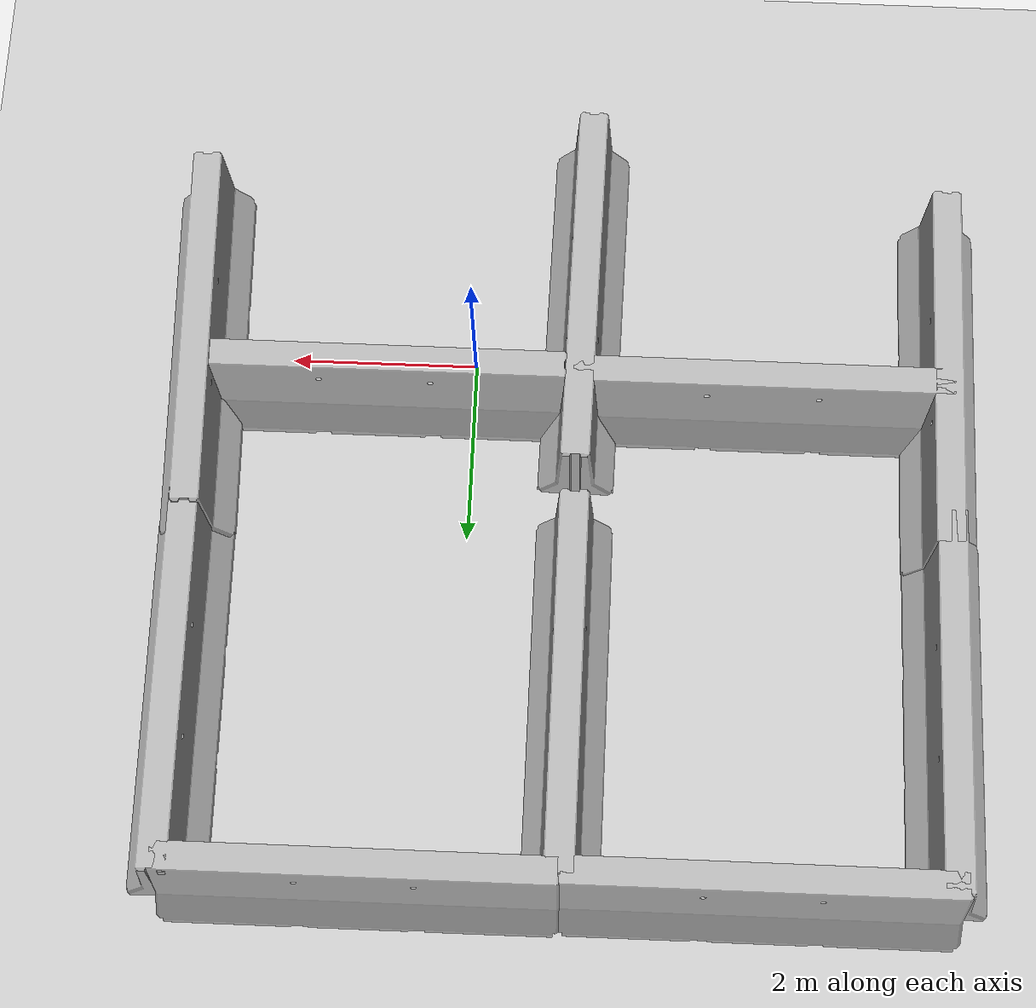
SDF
<sdf version="1.7">
 <world name="default">
  <light name="sun" type="directional">
   <pose>0 0 10 0 -0 0</pose>
   <diffuse>0.8 0.8 0.8 1</diffuse>
   <specular>0.2 0.2 0.2 1</specular>
   <attenuation>
    <range>1000</range>
    <constant>0.9</constant>
    <linear>0.01</linear>
    <quadratic>0.001</quadratic>
   </attenuation>
   <direction>-0.5 0.1 -0.9</direction>
   <spot><inner_angle>0</inner_angle><outer_angle>0</outer_angle><falloff>0</falloff></spot>
  </light>
  <model name="ground_plane">
   <static>1</static>
   <link name="link">
    <collision name="collision">
     <geometry><plane><normal>0 0 1</normal><size>100 100</size></plane></geometry>
     <surface>
      <contact><collide_bitmask>65535</collide_bitmask></contact>
      <friction><ode><mu>100</mu><mu2>50</mu2></ode></friction>
     </surface>
    </collision>
    <visual name="visual">
     <cast_shadows>0</cast_shadows>
     <geometry><plane><normal>0 0 1</normal><size>100 100</size></plane></geometry>
     <material>
      <script><uri>file://media/materials/scripts/gazebo.material</uri><name>Gazebo/Grey</name></script>
     </material>
    </visual>
   </link>
  </model>
  <physics type="ode">
   <real_time_update_rate>1000</real_time_update_rate>
   <max_step_size>0.001</max_step_size>
   <real_time_factor>1</real_time_factor>
   <ode>
    <solver>
     <type>quick</type>
     <iters>150</iters>
     <precon_iters>0</precon_iters>
     <sor>1.4</sor>
     <use_dynamic_moi_rescaling>1</use_dynamic_moi_rescaling>
    </solver>
    <constraints>
     <cfm>1e-05</cfm>
     <erp>0.2</erp>
     <contact_max_correcting_vel>2000</contact_max_correcting_vel>
     <contact_surface_layer>0.01</contact_surface_layer>
    </constraints>
   </ode>
  </physics>
  <scene><ambient>0.4 0.4 0.4 1</ambient><background>0.7 0.7 0.7 1</background><shadows>1</shadows></scene>
  <gravity>0 0 -9.8</gravity>
  <magnetic_field>6e-06 2.3e-05 -4.2e-05</magnetic_field>
  <atmosphere type="adiabatic"/>
  <spherical_coordinates>
   <surface_model>EARTH_WGS84</surface_model>
   <latitude_deg>0</latitude_deg>
   <longitude_deg>0</longitude_deg>
   <elevation>0</elevation>
   <heading_deg>0</heading_deg>
  </spherical_coordinates>
  <model name="jersey_barrier">
   <static>1</static>
   <link name="link">
    <visual name="visual">
     <geometry><mesh><uri>model://jersey_barrier/meshes/jersey_barrier.dae</uri></mesh></geometry>
    </visual>
    <collision name="upright">
     <pose>0 0 0.5715 0 -0 0</pose>
     <geometry><box><size>4.06542 0.3063 1.143</size></box></geometry>
    </collision>
    <collision name="base">
     <pose>0 0 0.032258 0 -0 0</pose>
     <geometry><box><size>4.06542 0.8107 0.064516</size></box></geometry>
    </collision>
    <collision name="base2">
     <pose>0 0 0.1 0 -0 0</pose>
     <geometry><box><size>4.06542 0.65 0.1</size></box></geometry>
    </collision>
    <collision name="base3">
     <pose>0 0 0.2 0 -0 0</pose>
     <geometry><box><size>4.06542 0.5 0.1</size></box></geometry>
    </collision>
    <collision name="left-angle">
     <pose>0 -0.224 0.2401 0.9 -0 0</pose>
     <geometry><box><size>4.06542 0.5 0.064516</size></box></geometry>
    </collision>
    <collision name="right-angle">
     <pose>0 0.224 0.2401 -0.9 0 0</pose>
     <geometry><box><size>4.06542 0.5 0.064516</size></box></geometry>
    </collision>
   </link>
   <pose>-3.07815 0.462034 0 0 -0 0</pose>
  </model>
  <model name="jersey_barrier_0">
   <static>1</static>
   <link name="link">
    <visual name="visual">
     <geometry><mesh><uri>model://jersey_barrier/meshes/jersey_barrier.dae</uri></mesh></geometry>
    </visual>
    <collision name="upright">
     <pose>0 0 0.5715 0 -0 0</pose>
     <geometry><box><size>4.06542 0.3063 1.143</size></box></geometry>
    </collision>
    <collision name="base">
     <pose>0 0 0.032258 0 -0 0</pose>
     <geometry><box><size>4.06542 0.8107 0.064516</size></box></geometry>
    </collision>
    <collision name="base2">
     <pose>0 0 0.1 0 -0 0</pose>
     <geometry><box><size>4.06542 0.65 0.1</size></box></geometry>
    </collision>
    <collision name="base3">
     <pose>0 0 0.2 0 -0 0</pose>
     <geometry><box><size>4.06542 0.5 0.1</size></box></geometry>
    </collision>
    <collision name="left-angle">
     <pose>0 -0.224 0.2401 0.9 -0 0</pose>
     <geometry><box><size>4.06542 0.5 0.064516</size></box></geometry>
    </collision>
    <collision name="right-angle">
     <pose>0 0.224 0.2401 -0.9 0 0</pose>
     <geometry><box><size>4.06542 0.5 0.064516</size></box></geometry>
    </collision>
   </link>
   <pose>-1.15522 -0.561432 0 0 -0 1.55862</pose>
  </model>
  <model name="jersey_barrier_1">
   <static>1</static>
   <link name="link">
    <visual name="visual">
     <geometry><mesh><uri>model://jersey_barrier/meshes/jersey_barrier.dae</uri></mesh></geometry>
    </visual>
    <collision name="upright">
     <pose>0 0 0.5715 0 -0 0</pose>
     <geometry><box><size>4.06542 0.3063 1.143</size></box></geometry>
    </collision>
    <collision name="base">
     <pose>0 0 0.032258 0 -0 0</pose>
     <geometry><box><size>4.06542 0.8107 0.064516</size></box></geometry>
    </collision>
    <collision name="base2">
     <pose>0 0 0.1 0 -0 0</pose>
     <geometry><box><size>4.06542 0.65 0.1</size></box></geometry>
    </collision>
    <collision name="base3">
     <pose>0 0 0.2 0 -0 0</pose>
     <geometry><box><size>4.06542 0.5 0.1</size></box></geometry>
    </collision>
    <collision name="left-angle">
     <pose>0 -0.224 0.2401 0.9 -0 0</pose>
     <geometry><box><size>4.06542 0.5 0.064516</size></box></geometry>
    </collision>
    <collision name="right-angle">
     <pose>0 0.224 0.2401 -0.9 0 0</pose>
     <geometry><box><size>4.06542 0.5 0.064516</size></box></geometry>
    </collision>
   </link>
   <pose>-1.14552 3.86493 0 0 -0 1.57251</pose>
  </model>
  <model name="jersey_barrier_2">
   <static>1</static>
   <link name="link">
    <visual name="visual">
     <geometry><mesh><uri>model://jersey_barrier/meshes/jersey_barrier.dae</uri></mesh></geometry>
    </visual>
    <collision name="upright">
     <pose>0 0 0.5715 0 -0 0</pose>
     <geometry><box><size>4.06542 0.3063 1.143</size></box></geometry>
    </collision>
    <collision name="base">
     <pose>0 0 0.032258 0 -0 0</pose>
     <geometry><box><size>4.06542 0.8107 0.064516</size></box></geometry>
    </collision>
    <collision name="base2">
     <pose>0 0 0.1 0 -0 0</pose>
     <geometry><box><size>4.06542 0.65 0.1</size></box></geometry>
    </collision>
    <collision name="base3">
     <pose>0 0 0.2 0 -0 0</pose>
     <geometry><box><size>4.06542 0.5 0.1</size></box></geometry>
    </collision>
    <collision name="left-angle">
     <pose>0 -0.224 0.2401 0.9 -0 0</pose>
     <geometry><box><size>4.06542 0.5 0.064516</size></box></geometry>
    </collision>
    <collision name="right-angle">
     <pose>0 0.224 0.2401 -0.9 0 0</pose>
     <geometry><box><size>4.06542 0.5 0.064516</size></box></geometry>
    </collision>
   </link>
   <pose>-3.15856 5.83608 0 0 -0 0</pose>
  </model>
  <model name="jersey_barrier_3">
   <static>1</static>
   <link name="link">
    <visual name="visual">
     <geometry><mesh><uri>model://jersey_barrier/meshes/jersey_barrier.dae</uri></mesh></geometry>
    </visual>
    <collision name="upright">
     <pose>0 0 0.5715 0 -0 0</pose>
     <geometry><box><size>4.06542 0.3063 1.143</size></box></geometry>
    </collision>
    <collision name="base">
     <pose>0 0 0.032258 0 -0 0</pose>
     <geometry><box><size>4.06542 0.8107 0.064516</size></box></geometry>
    </collision>
    <collision name="base2">
     <pose>0 0 0.1 0 -0 0</pose>
     <geometry><box><size>4.06542 0.65 0.1</size></box></geometry>
    </collision>
    <collision name="base3">
     <pose>0 0 0.2 0 -0 0</pose>
     <geometry><box><size>4.06542 0.5 0.1</size></box></geometry>
    </collision>
    <collision name="left-angle">
     <pose>0 -0.224 0.2401 0.9 -0 0</pose>
     <geometry><box><size>4.06542 0.5 0.064516</size></box></geometry>
    </collision>
    <collision name="right-angle">
     <pose>0 0.224 0.2401 -0.9 0 0</pose>
     <geometry><box><size>4.06542 0.5 0.064516</size></box></geometry>
    </collision>
   </link>
   <pose>1.02517 0.434311 0 0 -0 0</pose>
  </model>
  <model name="jersey_barrier_4">
   <static>1</static>
   <link name="link">
    <visual name="visual">
     <geometry><mesh><uri>model://jersey_barrier/meshes/jersey_barrier.dae</uri></mesh></geometry>
    </visual>
    <collision name="upright">
     <pose>0 0 0.5715 0 -0 0</pose>
     <geometry><box><size>4.06542 0.3063 1.143</size></box></geometry>
    </collision>
    <collision name="base">
     <pose>0 0 0.032258 0 -0 0</pose>
     <geometry><box><size>4.06542 0.8107 0.064516</size></box></geometry>
    </collision>
    <collision name="base2">
     <pose>0 0 0.1 0 -0 0</pose>
     <geometry><box><size>4.06542 0.65 0.1</size></box></geometry>
    </collision>
    <collision name="base3">
     <pose>0 0 0.2 0 -0 0</pose>
     <geometry><box><size>4.06542 0.5 0.1</size></box></geometry>
    </collision>
    <collision name="left-angle">
     <pose>0 -0.224 0.2401 0.9 -0 0</pose>
     <geometry><box><size>4.06542 0.5 0.064516</size></box></geometry>
    </collision>
    <collision name="right-angle">
     <pose>0 0.224 0.2401 -0.9 0 0</pose>
     <geometry><box><size>4.06542 0.5 0.064516</size></box></geometry>
    </collision>
   </link>
   <pose>0.870353 5.85279 0 0 -0 0</pose>
  </model>
  <model name="jersey_barrier_5">
   <static>1</static>
   <link name="link">
    <visual name="visual">
     <geometry><mesh><uri>model://jersey_barrier/meshes/jersey_barrier.dae</uri></mesh></geometry>
    </visual>
    <collision name="upright">
     <pose>0 0 0.5715 0 -0 0</pose>
     <geometry><box><size>4.06542 0.3063 1.143</size></box></geometry>
    </collision>
    <collision name="base">
     <pose>0 0 0.032258 0 -0 0</pose>
     <geometry><box><size>4.06542 0.8107 0.064516</size></box></geometry>
    </collision>
    <collision name="base2">
     <pose>0 0 0.1 0 -0 0</pose>
     <geometry><box><size>4.06542 0.65 0.1</size></box></geometry>
    </collision>
    <collision name="base3">
     <pose>0 0 0.2 0 -0 0</pose>
     <geometry><box><size>4.06542 0.5 0.1</size></box></geometry>
    </collision>
    <collision name="left-angle">
     <pose>0 -0.224 0.2401 0.9 -0 0</pose>
     <geometry><box><size>4.06542 0.5 0.064516</size></box></geometry>
    </collision>
    <collision name="right-angle">
     <pose>0 0.224 0.2401 -0.9 0 0</pose>
     <geometry><box><size>4.06542 0.5 0.064516</size></box></geometry>
    </collision>
   </link>
   <pose>2.86062 3.98272 0 0 0 -1.55926</pose>
  </model>
  <model name="jersey_barrier_6">
   <static>1</static>
   <link name="link">
    <visual name="visual">
     <geometry><mesh><uri>model://jersey_barrier/meshes/jersey_barrier.dae</uri></mesh></geometry>
    </visual>
    <collision name="upright">
     <pose>0 0 0.5715 0 -0 0</pose>
     <geometry><box><size>4.06542 0.3063 1.143</size></box></geometry>
    </collision>
    <collision name="base">
     <pose>0 0 0.032258 0 -0 0</pose>
     <geometry><box><size>4.06542 0.8107 0.064516</size></box></geometry>
    </collision>
    <collision name="base2">
     <pose>0 0 0.1 0 -0 0</pose>
     <geometry><box><size>4.06542 0.65 0.1</size></box></geometry>
    </collision>
    <collision name="base3">
     <pose>0 0 0.2 0 -0 0</pose>
     <geometry><box><size>4.06542 0.5 0.1</size></box></geometry>
    </collision>
    <collision name="left-angle">
     <pose>0 -0.224 0.2401 0.9 -0 0</pose>
     <geometry><box><size>4.06542 0.5 0.064516</size></box></geometry>
    </collision>
    <collision name="right-angle">
     <pose>0 0.224 0.2401 -0.9 0 0</pose>
     <geometry><box><size>4.06542 0.5 0.064516</size></box></geometry>
    </collision>
   </link>
   <pose>2.92469 0.114318 0.035431 0 0 -1.54256</pose>
  </model>
  <model name="jersey_barrier_7">
   <static>1</static>
   <link name="link">
    <visual name="visual">
     <geometry><mesh><uri>model://jersey_barrier/meshes/jersey_barrier.dae</uri></mesh></geometry>
    </visual>
    <collision name="upright">
     <pose>0 0 0.5715 0 -0 0</pose>
     <geometry><box><size>4.06542 0.3063 1.143</size></box></geometry>
    </collision>
    <collision name="base">
     <pose>0 0 0.032258 0 -0 0</pose>
     <geometry><box><size>4.06542 0.8107 0.064516</size></box></geometry>
    </collision>
    <collision name="base2">
     <pose>0 0 0.1 0 -0 0</pose>
     <geometry><box><size>4.06542 0.65 0.1</size></box></geometry>
    </collision>
    <collision name="base3">
     <pose>0 0 0.2 0 -0 0</pose>
     <geometry><box><size>4.06542 0.5 0.1</size></box></geometry>
    </collision>
    <collision name="left-angle">
     <pose>0 -0.224 0.2401 0.9 -0 0</pose>
     <geometry><box><size>4.06542 0.5 0.064516</size></box></geometry>
    </collision>
    <collision name="right-angle">
     <pose>0 0.224 0.2401 -0.9 0 0</pose>
     <geometry><box><size>4.06542 0.5 0.064516</size></box></geometry>
    </collision>
   </link>
   <pose>-5.05086 3.90781 0 0 0 -1.56121</pose>
  </model>
  <model name="jersey_barrier_8">
   <static>1</static>
   <link name="link">
    <visual name="visual">
     <geometry><mesh><uri>model://jersey_barrier/meshes/jersey_barrier.dae</uri></mesh></geometry>
    </visual>
    <collision name="upright">
     <pose>0 0 0.5715 0 -0 0</pose>
     <geometry><box><size>4.06542 0.3063 1.143</size></box></geometry>
    </collision>
    <collision name="base">
     <pose>0 0 0.032258 0 -0 0</pose>
     <geometry><box><size>4.06542 0.8107 0.064516</size></box></geometry>
    </collision>
    <collision name="base2">
     <pose>0 0 0.1 0 -0 0</pose>
     <geometry><box><size>4.06542 0.65 0.1</size></box></geometry>
    </collision>
    <collision name="base3">
     <pose>0 0 0.2 0 -0 0</pose>
     <geometry><box><size>4.06542 0.5 0.1</size></box></geometry>
    </collision>
    <collision name="left-angle">
     <pose>0 -0.224 0.2401 0.9 -0 0</pose>
     <geometry><box><size>4.06542 0.5 0.064516</size></box></geometry>
    </collision>
    <collision name="right-angle">
     <pose>0 0.224 0.2401 -0.9 0 0</pose>
     <geometry><box><size>4.06542 0.5 0.064516</size></box></geometry>
    </collision>
   </link>
   <pose>-5.01545 0.247736 0 0 0 -1.56742</pose>
  </model>
 </world>
</sdf>
